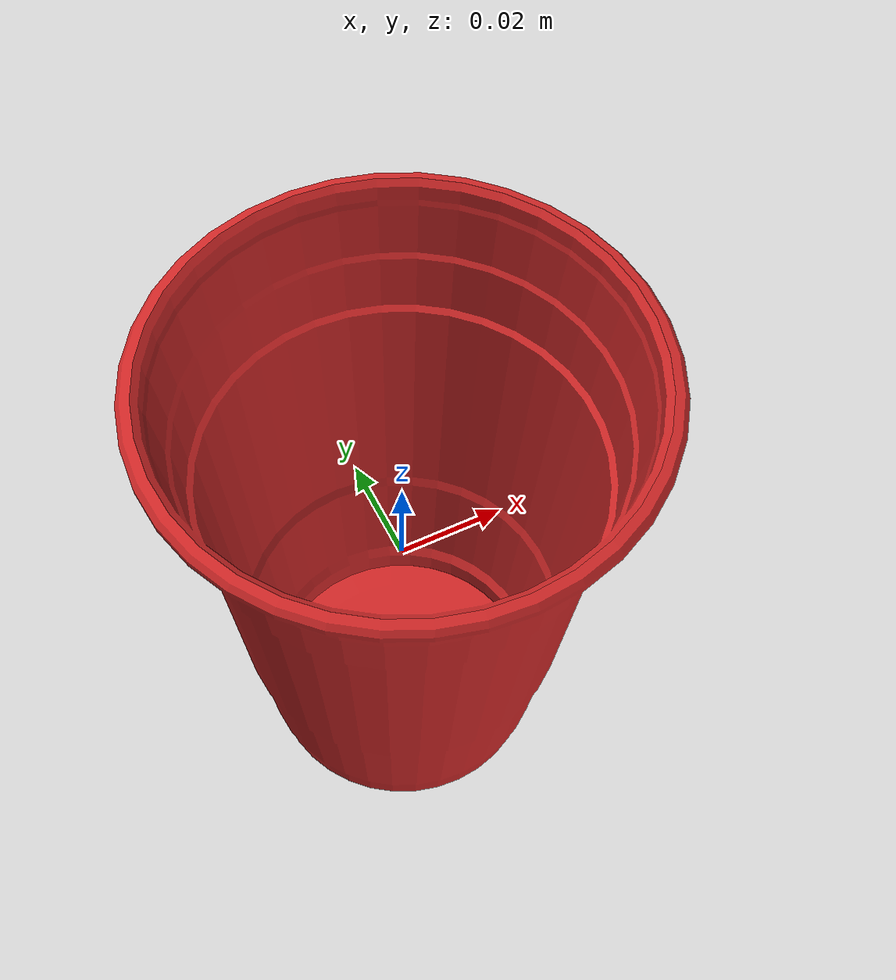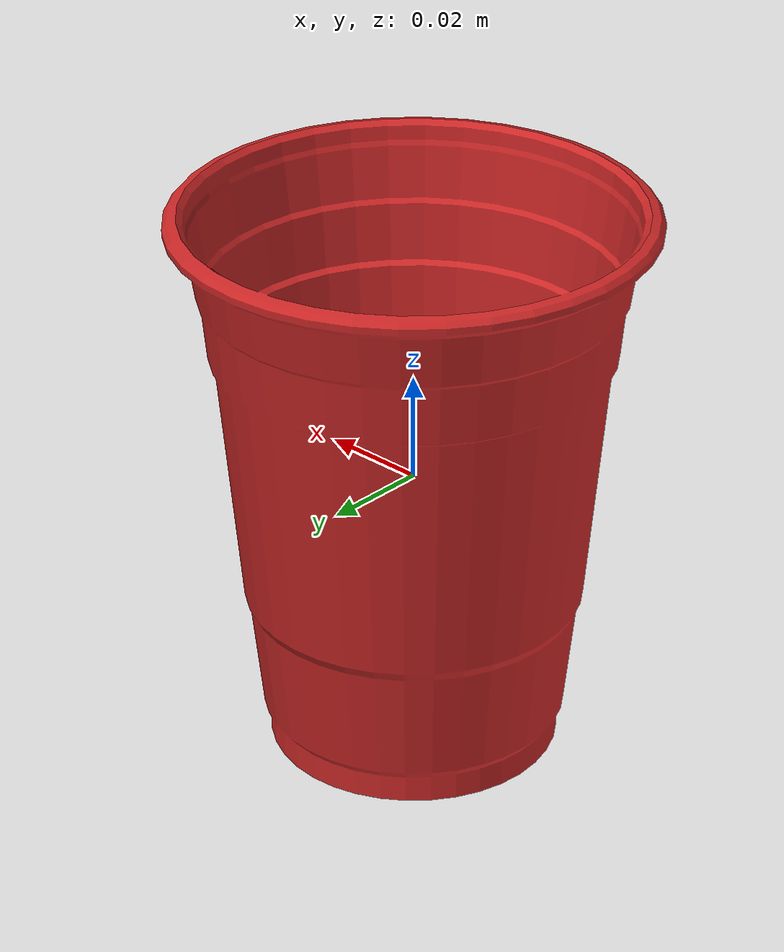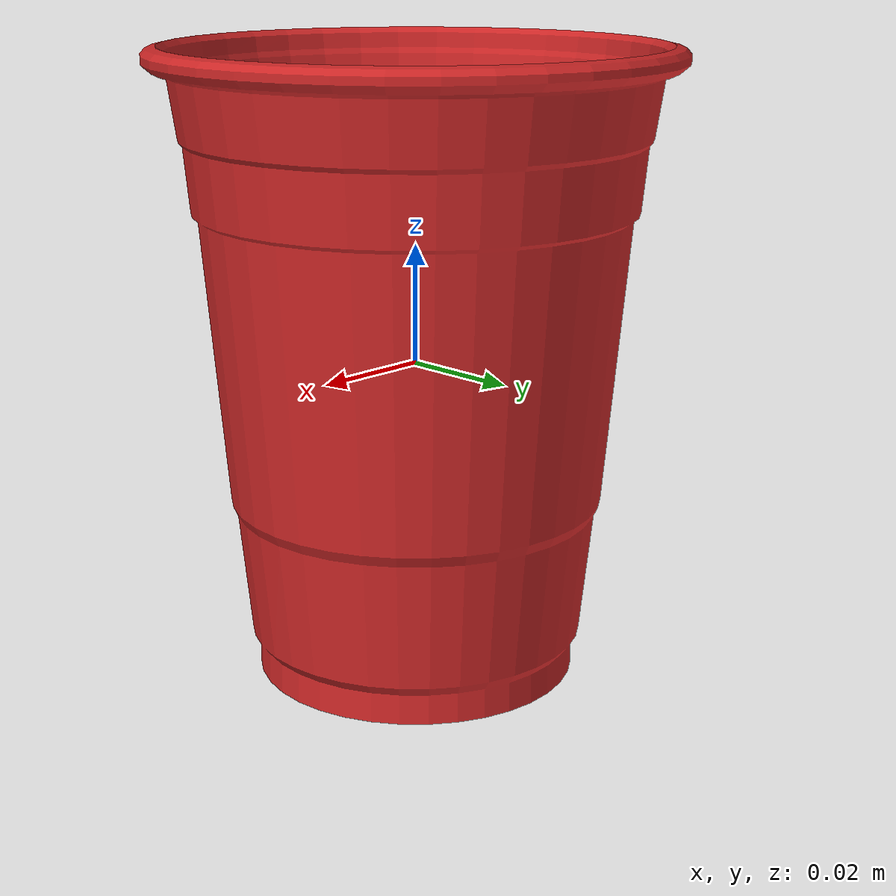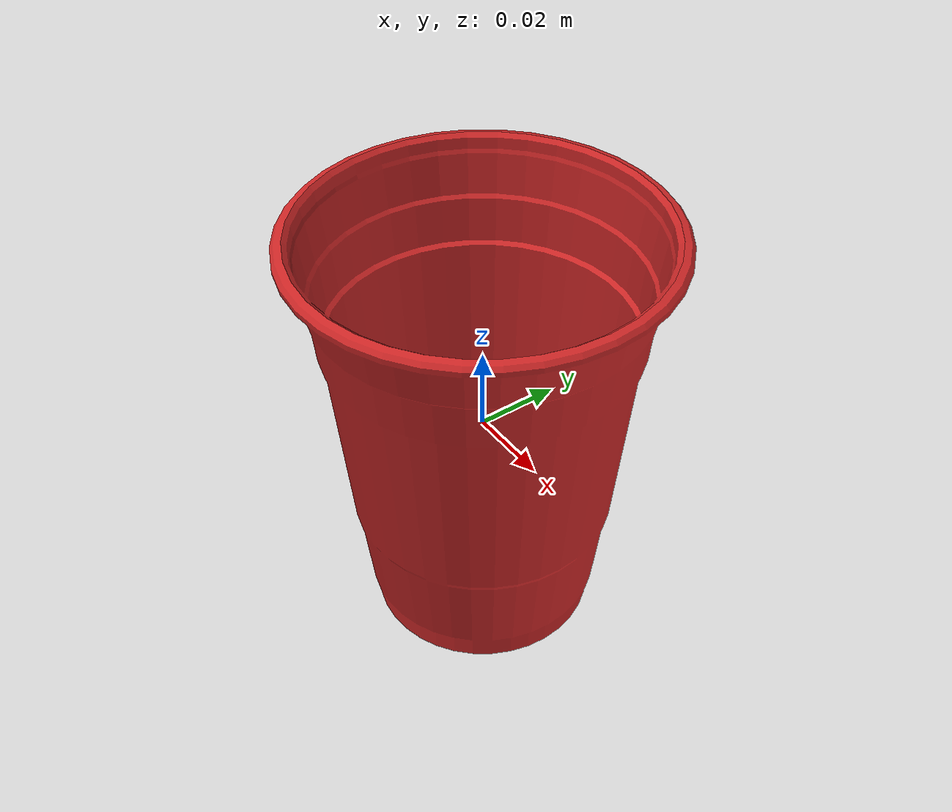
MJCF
<mujoco model="cup_3">
  <asset>
    <mesh file="visual/model_normalized_0.obj" name="model_normalized_0_vis" scale="0.10499999999999995 0.10499999999999995 0.10499999999999995" refquat="1.0 0.0 0.0 0.0"/>
    <texture type="2d" name="image0" file="visual/image0.png"/>
    <material name="RedCup" texture="image0" specular="0.5" shininess="0.25"/>
    <mesh file="collision/collision_mesh_collision_0.obj" name="cup_collision_mesh_0" scale="0.10499999999999995 0.10499999999999995 0.10499999999999995" refquat="1.0 0.0 0.0 0.0"/>
    <mesh file="collision/collision_mesh_collision_1.obj" name="cup_collision_mesh_1" scale="0.10499999999999995 0.10499999999999995 0.10499999999999995" refquat="1.0 0.0 0.0 0.0"/>
    <mesh file="collision/collision_mesh_collision_2.obj" name="cup_collision_mesh_2" scale="0.10499999999999995 0.10499999999999995 0.10499999999999995" refquat="1.0 0.0 0.0 0.0"/>
    <mesh file="collision/collision_mesh_collision_3.obj" name="cup_collision_mesh_3" scale="0.10499999999999995 0.10499999999999995 0.10499999999999995" refquat="1.0 0.0 0.0 0.0"/>
    <mesh file="collision/collision_mesh_collision_4.obj" name="cup_collision_mesh_4" scale="0.10499999999999995 0.10499999999999995 0.10499999999999995" refquat="1.0 0.0 0.0 0.0"/>
    <mesh file="collision/collision_mesh_collision_5.obj" name="cup_collision_mesh_5" scale="0.10499999999999995 0.10499999999999995 0.10499999999999995" refquat="1.0 0.0 0.0 0.0"/>
    <mesh file="collision/collision_mesh_collision_6.obj" name="cup_collision_mesh_6" scale="0.10499999999999995 0.10499999999999995 0.10499999999999995" refquat="1.0 0.0 0.0 0.0"/>
    <mesh file="collision/collision_mesh_collision_7.obj" name="cup_collision_mesh_7" scale="0.10499999999999995 0.10499999999999995 0.10499999999999995" refquat="1.0 0.0 0.0 0.0"/>
    <mesh file="collision/collision_mesh_collision_8.obj" name="cup_collision_mesh_8" scale="0.10499999999999995 0.10499999999999995 0.10499999999999995" refquat="1.0 0.0 0.0 0.0"/>
    <mesh file="collision/collision_mesh_collision_9.obj" name="cup_collision_mesh_9" scale="0.10499999999999995 0.10499999999999995 0.10499999999999995" refquat="1.0 0.0 0.0 0.0"/>
    <mesh file="collision/collision_mesh_collision_10.obj" name="cup_collision_mesh_10" scale="0.10499999999999995 0.10499999999999995 0.10499999999999995" refquat="1.0 0.0 0.0 0.0"/>
    <mesh file="collision/collision_mesh_collision_11.obj" name="cup_collision_mesh_11" scale="0.10499999999999995 0.10499999999999995 0.10499999999999995" refquat="1.0 0.0 0.0 0.0"/>
    <mesh file="collision/collision_mesh_collision_12.obj" name="cup_collision_mesh_12" scale="0.10499999999999995 0.10499999999999995 0.10499999999999995" refquat="1.0 0.0 0.0 0.0"/>
    <mesh file="collision/collision_mesh_collision_13.obj" name="cup_collision_mesh_13" scale="0.10499999999999995 0.10499999999999995 0.10499999999999995" refquat="1.0 0.0 0.0 0.0"/>
    <mesh file="collision/collision_mesh_collision_14.obj" name="cup_collision_mesh_14" scale="0.10499999999999995 0.10499999999999995 0.10499999999999995" refquat="1.0 0.0 0.0 0.0"/>
    <mesh file="collision/collision_mesh_collision_15.obj" name="cup_collision_mesh_15" scale="0.10499999999999995 0.10499999999999995 0.10499999999999995" refquat="1.0 0.0 0.0 0.0"/>
  </asset>
  <default>
    <default class="region">
      <geom group="1" conaffinity="0" contype="0" rgba="0 1 0 0"/>
    </default>
    <default class="collision">
      <geom group="3" rgba="0.5 0 0 0.5" density="1000.0"/>
    </default>
  </default>
  <worldbody>
    <body>
      <body name="object">
        <geom solimp="0.998 0.998 0.001" solref="0.001 1" density="100" friction="0.95 0.3 0.1" type="mesh" mesh="model_normalized_0_vis" conaffinity="0" contype="0" group="1" material="RedCup"/>
        <geom class="region" name="reg_bbox" type="box" pos="5.365500000002741e-07 5.381250000023594e-07 0.0" size="0.04353946169999998 0.04353946012499998 0.05249999999999998"/>
        <geom mesh="cup_collision_mesh_0" type="mesh" class="collision"/>
        <geom mesh="cup_collision_mesh_1" type="mesh" class="collision"/>
        <geom mesh="cup_collision_mesh_2" type="mesh" class="collision"/>
        <geom mesh="cup_collision_mesh_3" type="mesh" class="collision"/>
        <geom mesh="cup_collision_mesh_4" type="mesh" class="collision"/>
        <geom mesh="cup_collision_mesh_5" type="mesh" class="collision"/>
        <geom mesh="cup_collision_mesh_6" type="mesh" class="collision"/>
        <geom mesh="cup_collision_mesh_7" type="mesh" class="collision"/>
        <geom mesh="cup_collision_mesh_8" type="mesh" class="collision"/>
        <geom mesh="cup_collision_mesh_9" type="mesh" class="collision"/>
        <geom mesh="cup_collision_mesh_10" type="mesh" class="collision"/>
        <geom mesh="cup_collision_mesh_11" type="mesh" class="collision"/>
        <geom mesh="cup_collision_mesh_12" type="mesh" class="collision"/>
        <geom mesh="cup_collision_mesh_13" type="mesh" class="collision"/>
        <geom mesh="cup_collision_mesh_14" type="mesh" class="collision"/>
        <geom mesh="cup_collision_mesh_15" type="mesh" class="collision"/>
        <geom rgba="0 0 0 0" size="0.037 0.003" pos="0 0 0.037" type="cylinder" name="liquid" class="region"/>
        <geom rgba="0 0 0 0 " size="0.029 0.04" pos="0 0 0.01" type="cylinder" name="reg_int" class="region"/>
      </body>
    </body>
  </worldbody>
</mujoco>
